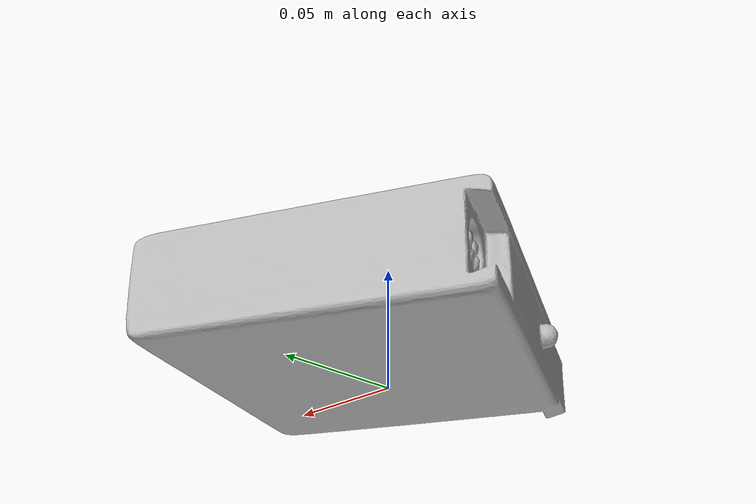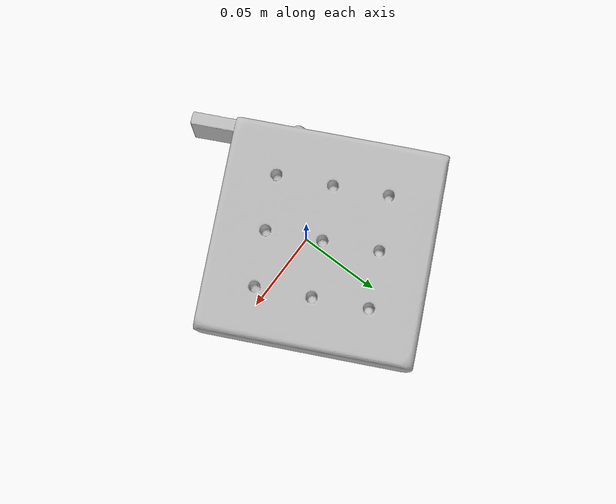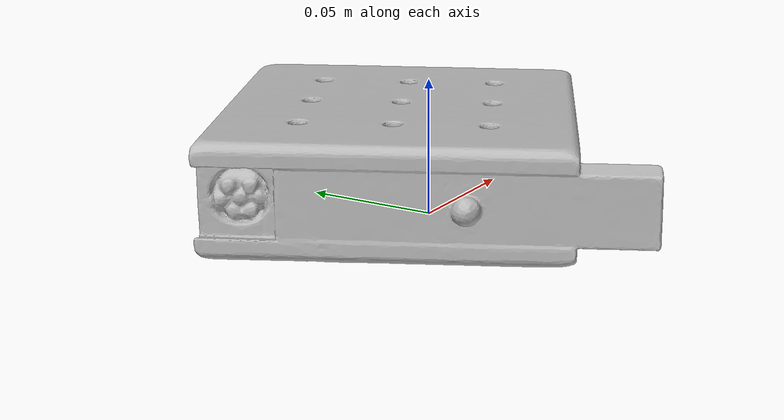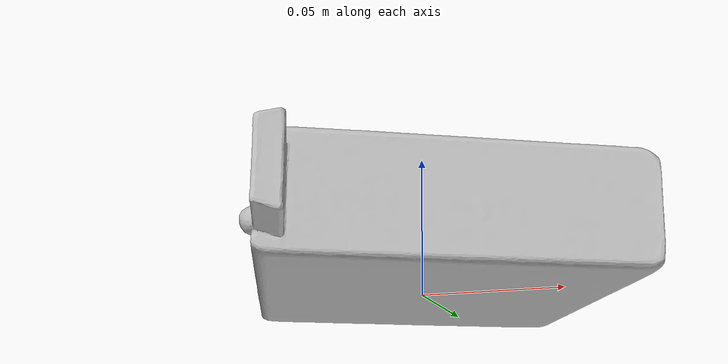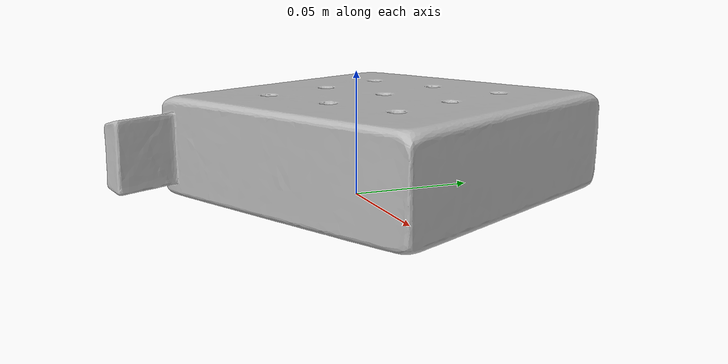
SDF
<?xml version="1.0" ?>
<sdf version='1.8'>
  <model name='ycb_071_nine_hole_peg_test'>
    <link name='body'>
      <inertial>
        <mass>1.435</mass>
        <pose>0.000614460759 0.0107947213 0.0202508661 0 0 0</pose>
        <inertia>
          <ixx>0.00218332907056</ixx>
          <ixy>-4.43920651524e-05</ixy>
          <ixz>1.32107640284e-06</ixz>
          <iyy>0.00199142937023</iyy>
          <iyz>-4.24832047138e-06</iyz>
          <izz>0.00379170599246</izz>
        </inertia>
      </inertial>
      <visual name='ycb_071_nine_hole_peg_test_visual'>
        <pose>0.000803 -0.013579 0.000298 0 0 0</pose>
        <geometry>
          <mesh>
            <uri>model://ycb_071_nine_hole_peg_test/meshes/textured.dae</uri>
          </mesh>
        </geometry>
      </visual>
      <collision name='ycb_071_nine_hole_peg_test_collision'>
        <pose>0.000803 -0.013579 0.000298 0 0 0</pose>
        <geometry>
          <mesh>
            <uri>model://ycb_071_nine_hole_peg_test/meshes/nontextured.stl</uri>
          </mesh>
        </geometry>
        <max_contacts>10</max_contacts>
        <surface>
          <contact>
            <ode>
              <kp>1e15</kp>
              <kd>1e13</kd>
            </ode>
          </contact>
        </surface>
      </collision>
    </link>
  </model>
</sdf>
